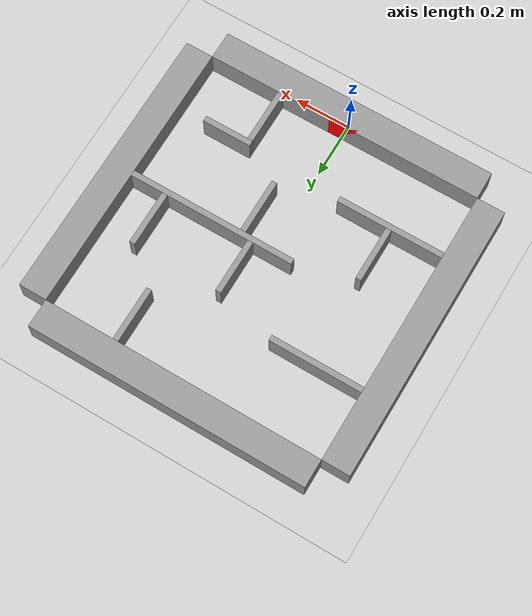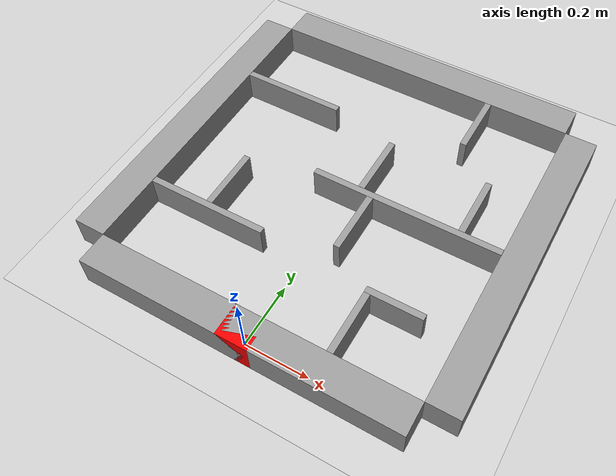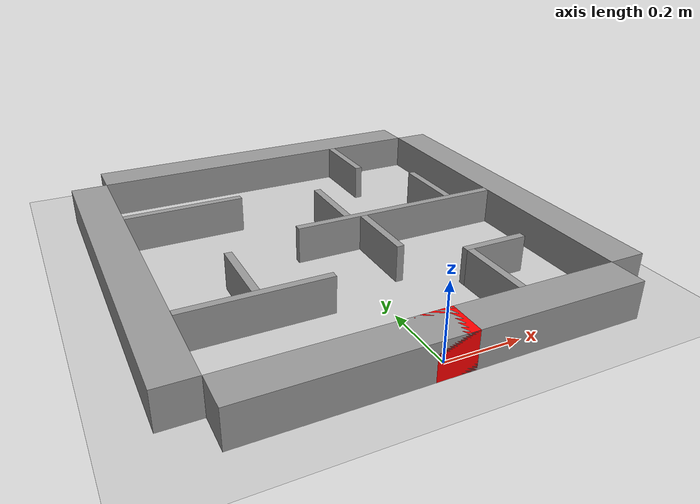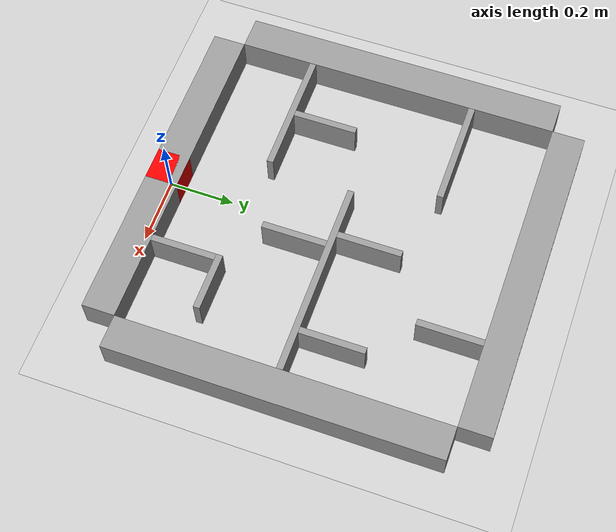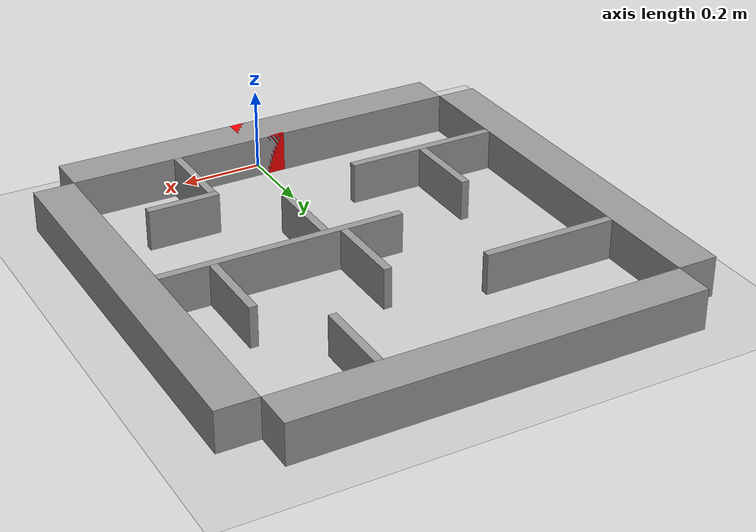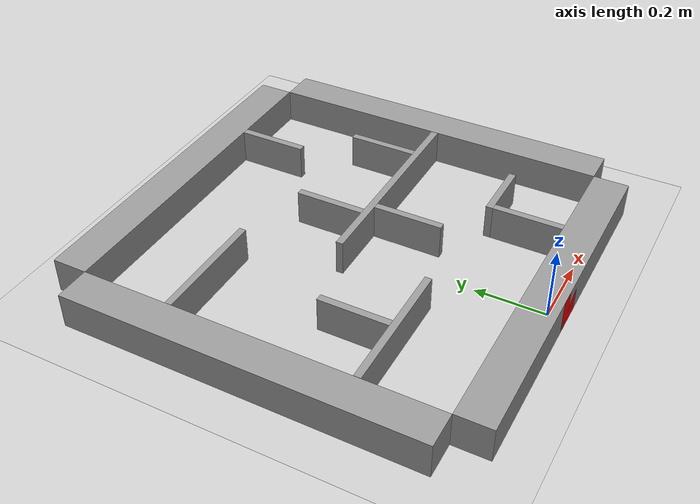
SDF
<sdf version="1.6">
 <world name="default">
  <physics type="ode">
   <ode><solver><type>quick</type><iters>50</iters><friction_model>cone_model</friction_model></solver></ode>
  </physics>
  <light name="sun" type="directional">
   <pose>0 0 10 0 -0 0</pose>
   <diffuse>0.8 0.8 0.8 1</diffuse>
   <specular>0.1 0.1 0.1 1</specular>
   <attenuation>
    <range>1000</range>
    <constant>0.9</constant>
    <linear>0.01</linear>
    <quadratic>0.001</quadratic>
   </attenuation>
   <direction>-0.5 0.5 -1</direction>
  </light>
  <model name="ground_plane">
   <static>1</static>
   <link name="link">
    <collision name="collision">
     <geometry><plane><normal>0 0 1</normal><size>100 100</size></plane></geometry>
     <surface><friction><ode><mu>100</mu><mu2>50</mu2></ode></friction></surface>
    </collision>
    <visual name="visual">
     <cast_shadows>0</cast_shadows>
     <geometry><plane><normal>0 0 1</normal><size>100 100</size></plane></geometry>
     <material>
      <script><uri>file://media/materials/scripts/gazebo.material</uri><name>Gazebo/Grey</name></script>
     </material>
    </visual>
   </link>
  </model>
  <gravity>0 0 -9.8</gravity>
  <magnetic_field>6e-06 2.3e-05 -4.2e-05</magnetic_field>
  <atmosphere type="adiabatic"/>
  <physics name="default_physics" default="0" type="ode">
   <max_step_size>0.001</max_step_size>
   <real_time_factor>1</real_time_factor>
   <real_time_update_rate>1000</real_time_update_rate>
  </physics>
  <scene><ambient>0.4 0.4 0.4 1</ambient><background>0.7 0.7 0.7 1</background><shadows>1</shadows></scene>
  <spherical_coordinates>
   <surface_model>EARTH_WGS84</surface_model>
   <latitude_deg>0</latitude_deg>
   <longitude_deg>0</longitude_deg>
   <elevation>0</elevation>
   <heading_deg>0</heading_deg>
  </spherical_coordinates>
  <model name="vector_world_4">
   <link name="link_0">
    <pose>-0.03914 -0.521493 0 0 -0 0</pose>
    <inertial>
     <mass>1</mass>
     <inertia>
      <ixx>0.166667</ixx>
      <ixy>0</ixy>
      <ixz>0</ixz>
      <iyy>0.166667</iyy>
      <iyz>0</iyz>
      <izz>0.166667</izz>
     </inertia>
    </inertial>
    <visual name="visual">
     <geometry><box><size>1 0.1 0.1</size></box></geometry>
     <material>
      <lighting>1</lighting>
      <script><uri>file://media/materials/scripts/gazebo.material</uri><name>Gazebo/Grey</name></script>
      <ambient>0.3 0.3 0.3 1</ambient>
      <diffuse>0.7 0.7 0.7 1</diffuse>
      <specular>0.01 0.01 0.01 1</specular>
      <emissive>0 0 0 1</emissive>
      <shader type="vertex"><normal_map>__default__</normal_map></shader>
     </material>
    </visual>
    <collision name="collision">
     <geometry><box><size>1 0.1 0.1</size></box></geometry>
     <surface>
      <friction>
       <ode><mu>1</mu><mu2>1</mu2><fdir1>0 0 0</fdir1><slip1>0</slip1><slip2>0</slip2></ode>
       <torsional>
        <coefficient>1</coefficient>
        <patch_radius>0</patch_radius>
        <surface_radius>0</surface_radius>
        <use_patch_radius>1</use_patch_radius>
        <ode><slip>0</slip></ode>
       </torsional>
      </friction>
      <bounce><restitution_coefficient>0</restitution_coefficient><threshold>1e+06</threshold></bounce>
      <contact>
       <collide_without_contact>0</collide_without_contact>
       <collide_without_contact_bitmask>1</collide_without_contact_bitmask>
       <collide_bitmask>1</collide_bitmask>
       <ode>
        <soft_cfm>0</soft_cfm>
        <soft_erp>0.2</soft_erp>
        <kp>1e+13</kp>
        <kd>1</kd>
        <max_vel>0.01</max_vel>
        <min_depth>0</min_depth>
       </ode>
       <bullet>
        <split_impulse>1</split_impulse>
        <split_impulse_penetration_threshold>-0.01</split_impulse_penetration_threshold>
        <soft_cfm>0</soft_cfm>
        <soft_erp>0.2</soft_erp>
        <kp>1e+13</kp>
        <kd>1</kd>
       </bullet>
      </contact>
     </surface>
    </collision>
   </link>
   <link name="link_0_clone">
    <pose>0.51086 0.028507 0 0 -0 1.57</pose>
    <inertial>
     <mass>1</mass>
     <inertia>
      <ixx>0.166667</ixx>
      <ixy>0</ixy>
      <ixz>0</ixz>
      <iyy>0.166667</iyy>
      <iyz>0</iyz>
      <izz>0.166667</izz>
     </inertia>
    </inertial>
    <visual name="visual">
     <geometry><box><size>1 0.1 0.1</size></box></geometry>
     <material>
      <lighting>1</lighting>
      <script><uri>file://media/materials/scripts/gazebo.material</uri><name>Gazebo/Grey</name></script>
      <ambient>0.3 0.3 0.3 1</ambient>
      <diffuse>0.7 0.7 0.7 1</diffuse>
      <specular>0.01 0.01 0.01 1</specular>
      <emissive>0 0 0 1</emissive>
      <shader type="vertex"><normal_map>__default__</normal_map></shader>
     </material>
    </visual>
    <collision name="collision">
     <geometry><box><size>1 0.1 0.1</size></box></geometry>
     <surface>
      <friction>
       <ode><mu>1</mu><mu2>1</mu2><fdir1>0 0 0</fdir1><slip1>0</slip1><slip2>0</slip2></ode>
       <torsional>
        <coefficient>1</coefficient>
        <patch_radius>0</patch_radius>
        <surface_radius>0</surface_radius>
        <use_patch_radius>1</use_patch_radius>
        <ode><slip>0</slip></ode>
       </torsional>
      </friction>
      <bounce><restitution_coefficient>0</restitution_coefficient><threshold>1e+06</threshold></bounce>
      <contact>
       <collide_without_contact>0</collide_without_contact>
       <collide_without_contact_bitmask>1</collide_without_contact_bitmask>
       <collide_bitmask>1</collide_bitmask>
       <ode>
        <soft_cfm>0</soft_cfm>
        <soft_erp>0.2</soft_erp>
        <kp>1e+13</kp>
        <kd>1</kd>
        <max_vel>0.01</max_vel>
        <min_depth>0</min_depth>
       </ode>
       <bullet>
        <split_impulse>1</split_impulse>
        <split_impulse_penetration_threshold>-0.01</split_impulse_penetration_threshold>
        <soft_cfm>0</soft_cfm>
        <soft_erp>0.2</soft_erp>
        <kp>1e+13</kp>
        <kd>1</kd>
       </bullet>
      </contact>
     </surface>
    </collision>
   </link>
   <link name="link_0_clone_0">
    <pose>-0.58914 0.028507 0 0 -0 1.57</pose>
    <inertial>
     <mass>1</mass>
     <inertia>
      <ixx>0.166667</ixx>
      <ixy>0</ixy>
      <ixz>0</ixz>
      <iyy>0.166667</iyy>
      <iyz>0</iyz>
      <izz>0.166667</izz>
     </inertia>
    </inertial>
    <visual name="visual">
     <geometry><box><size>1 0.1 0.1</size></box></geometry>
     <material>
      <lighting>1</lighting>
      <script><uri>file://media/materials/scripts/gazebo.material</uri><name>Gazebo/Grey</name></script>
      <ambient>0.3 0.3 0.3 1</ambient>
      <diffuse>0.7 0.7 0.7 1</diffuse>
      <specular>0.01 0.01 0.01 1</specular>
      <emissive>0 0 0 1</emissive>
      <shader type="vertex"><normal_map>__default__</normal_map></shader>
     </material>
    </visual>
    <collision name="collision">
     <geometry><box><size>1 0.1 0.1</size></box></geometry>
     <surface>
      <friction>
       <ode><mu>1</mu><mu2>1</mu2><fdir1>0 0 0</fdir1><slip1>0</slip1><slip2>0</slip2></ode>
       <torsional>
        <coefficient>1</coefficient>
        <patch_radius>0</patch_radius>
        <surface_radius>0</surface_radius>
        <use_patch_radius>1</use_patch_radius>
        <ode><slip>0</slip></ode>
       </torsional>
      </friction>
      <bounce><restitution_coefficient>0</restitution_coefficient><threshold>1e+06</threshold></bounce>
      <contact>
       <collide_without_contact>0</collide_without_contact>
       <collide_without_contact_bitmask>1</collide_without_contact_bitmask>
       <collide_bitmask>1</collide_bitmask>
       <ode>
        <soft_cfm>0</soft_cfm>
        <soft_erp>0.2</soft_erp>
        <kp>1e+13</kp>
        <kd>1</kd>
        <max_vel>0.01</max_vel>
        <min_depth>0</min_depth>
       </ode>
       <bullet>
        <split_impulse>1</split_impulse>
        <split_impulse_penetration_threshold>-0.01</split_impulse_penetration_threshold>
        <soft_cfm>0</soft_cfm>
        <soft_erp>0.2</soft_erp>
        <kp>1e+13</kp>
        <kd>1</kd>
       </bullet>
      </contact>
     </surface>
    </collision>
   </link>
   <link name="link_0_clone_1">
    <pose>-0.03914 0.578507 0 0 -0 0</pose>
    <inertial>
     <mass>1</mass>
     <inertia>
      <ixx>0.166667</ixx>
      <ixy>0</ixy>
      <ixz>0</ixz>
      <iyy>0.166667</iyy>
      <iyz>0</iyz>
      <izz>0.166667</izz>
     </inertia>
    </inertial>
    <visual name="visual">
     <geometry><box><size>1 0.1 0.1</size></box></geometry>
     <material>
      <lighting>1</lighting>
      <script><uri>file://media/materials/scripts/gazebo.material</uri><name>Gazebo/Grey</name></script>
      <ambient>0.3 0.3 0.3 1</ambient>
      <diffuse>0.7 0.7 0.7 1</diffuse>
      <specular>0.01 0.01 0.01 1</specular>
      <emissive>0 0 0 1</emissive>
      <shader type="vertex"><normal_map>__default__</normal_map></shader>
     </material>
    </visual>
    <collision name="collision">
     <geometry><box><size>1 0.1 0.1</size></box></geometry>
     <surface>
      <friction>
       <ode><mu>1</mu><mu2>1</mu2><fdir1>0 0 0</fdir1><slip1>0</slip1><slip2>0</slip2></ode>
       <torsional>
        <coefficient>1</coefficient>
        <patch_radius>0</patch_radius>
        <surface_radius>0</surface_radius>
        <use_patch_radius>1</use_patch_radius>
        <ode><slip>0</slip></ode>
       </torsional>
      </friction>
      <bounce><restitution_coefficient>0</restitution_coefficient><threshold>1e+06</threshold></bounce>
      <contact>
       <collide_without_contact>0</collide_without_contact>
       <collide_without_contact_bitmask>1</collide_without_contact_bitmask>
       <collide_bitmask>1</collide_bitmask>
       <ode>
        <soft_cfm>0</soft_cfm>
        <soft_erp>0.2</soft_erp>
        <kp>1e+13</kp>
        <kd>1</kd>
        <max_vel>0.01</max_vel>
        <min_depth>0</min_depth>
       </ode>
       <bullet>
        <split_impulse>1</split_impulse>
        <split_impulse_penetration_threshold>-0.01</split_impulse_penetration_threshold>
        <soft_cfm>0</soft_cfm>
        <soft_erp>0.2</soft_erp>
        <kp>1e+13</kp>
        <kd>1</kd>
       </bullet>
      </contact>
     </surface>
    </collision>
   </link>
   <link name="link_1">
    <pose>0.160273 0.021189 0 0 -0 0</pose>
    <inertial>
     <mass>6.00414</mass>
     <inertia><ixx>1.00069</ixx><ixy>0</ixy><ixz>0</ixz><iyy>18.5377</iyy><iyz>0</iyz><izz>18.5377</izz></inertia>
    </inertial>
    <visual name="visual">
     <geometry><box><size>0.600378 0.02 0.1</size></box></geometry>
     <material>
      <lighting>1</lighting>
      <script><uri>file://media/materials/scripts/gazebo.material</uri><name>Gazebo/Grey</name></script>
      <ambient>0.3 0.3 0.3 1</ambient>
      <diffuse>0.7 0.7 0.7 1</diffuse>
      <specular>0.01 0.01 0.01 1</specular>
      <emissive>0 0 0 1</emissive>
      <shader type="vertex"><normal_map>__default__</normal_map></shader>
     </material>
    </visual>
    <collision name="collision">
     <geometry><box><size>0.600378 0.02 0.1</size></box></geometry>
     <surface>
      <friction>
       <ode><mu>1</mu><mu2>1</mu2><fdir1>0 0 0</fdir1><slip1>0</slip1><slip2>0</slip2></ode>
       <torsional>
        <coefficient>1</coefficient>
        <patch_radius>0</patch_radius>
        <surface_radius>0</surface_radius>
        <use_patch_radius>1</use_patch_radius>
        <ode><slip>0</slip></ode>
       </torsional>
      </friction>
      <bounce><restitution_coefficient>0</restitution_coefficient><threshold>1e+06</threshold></bounce>
      <contact>
       <collide_without_contact>0</collide_without_contact>
       <collide_without_contact_bitmask>1</collide_without_contact_bitmask>
       <collide_bitmask>1</collide_bitmask>
       <ode>
        <soft_cfm>0</soft_cfm>
        <soft_erp>0.2</soft_erp>
        <kp>1e+13</kp>
        <kd>1</kd>
        <max_vel>0.01</max_vel>
        <min_depth>0</min_depth>
       </ode>
       <bullet>
        <split_impulse>1</split_impulse>
        <split_impulse_penetration_threshold>-0.01</split_impulse_penetration_threshold>
        <soft_cfm>0</soft_cfm>
        <soft_erp>0.2</soft_erp>
        <kp>1e+13</kp>
        <kd>1</kd>
       </bullet>
      </contact>
     </surface>
    </collision>
   </link>
   <link name="link_1_clone">
    <pose>-0.348111 -0.24109 0 0 -0 0</pose>
    <inertial>
     <mass>3.81284</mass>
     <inertia><ixx>0.635474</ixx><ixy>0</ixy><ixz>0</ixz><iyy>4.93694</iyy><iyz>0</iyz><izz>4.93694</izz></inertia>
    </inertial>
    <visual name="visual">
     <geometry><box><size>0.381262 0.02 0.1</size></box></geometry>
     <material>
      <lighting>1</lighting>
      <script><uri>file://media/materials/scripts/gazebo.material</uri><name>Gazebo/Grey</name></script>
      <ambient>0.3 0.3 0.3 1</ambient>
      <diffuse>0.7 0.7 0.7 1</diffuse>
      <specular>0.01 0.01 0.01 1</specular>
      <emissive>0 0 0 1</emissive>
      <shader type="vertex"><normal_map>__default__</normal_map></shader>
     </material>
    </visual>
    <collision name="collision">
     <geometry><box><size>0.381262 0.02 0.1</size></box></geometry>
     <surface>
      <friction>
       <ode><mu>1</mu><mu2>1</mu2><fdir1>0 0 0</fdir1><slip1>0</slip1><slip2>0</slip2></ode>
       <torsional>
        <coefficient>1</coefficient>
        <patch_radius>0</patch_radius>
        <surface_radius>0</surface_radius>
        <use_patch_radius>1</use_patch_radius>
        <ode><slip>0</slip></ode>
       </torsional>
      </friction>
      <bounce><restitution_coefficient>0</restitution_coefficient><threshold>1e+06</threshold></bounce>
      <contact>
       <collide_without_contact>0</collide_without_contact>
       <collide_without_contact_bitmask>1</collide_without_contact_bitmask>
       <collide_bitmask>1</collide_bitmask>
       <ode>
        <soft_cfm>0</soft_cfm>
        <soft_erp>0.2</soft_erp>
        <kp>1e+13</kp>
        <kd>1</kd>
        <max_vel>0.01</max_vel>
        <min_depth>0</min_depth>
       </ode>
       <bullet>
        <split_impulse>1</split_impulse>
        <split_impulse_penetration_threshold>-0.01</split_impulse_penetration_threshold>
        <soft_cfm>0</soft_cfm>
        <soft_erp>0.2</soft_erp>
        <kp>1e+13</kp>
        <kd>1</kd>
       </bullet>
      </contact>
     </surface>
    </collision>
   </link>
   <link name="link_1_clone_0">
    <pose>-0.37322 0.2744 0 0 -0 0</pose>
    <inertial>
     <mass>3.31064</mass>
     <inertia><ixx>0.551774</ixx><ixy>0</ixy><ixz>0</ixz><iyy>3.29972</iyy><iyz>0</iyz><izz>3.29972</izz></inertia>
    </inertial>
    <visual name="visual">
     <geometry><box><size>0.331044 0.02 0.1</size></box></geometry>
     <material>
      <lighting>1</lighting>
      <script><uri>file://media/materials/scripts/gazebo.material</uri><name>Gazebo/Grey</name></script>
      <ambient>0.3 0.3 0.3 1</ambient>
      <diffuse>0.7 0.7 0.7 1</diffuse>
      <specular>0.01 0.01 0.01 1</specular>
      <emissive>0 0 0 1</emissive>
      <shader type="vertex"><normal_map>__default__</normal_map></shader>
     </material>
    </visual>
    <collision name="collision">
     <geometry><box><size>0.331044 0.02 0.1</size></box></geometry>
     <surface>
      <friction>
       <ode><mu>1</mu><mu2>1</mu2><fdir1>0 0 0</fdir1><slip1>0</slip1><slip2>0</slip2></ode>
       <torsional>
        <coefficient>1</coefficient>
        <patch_radius>0</patch_radius>
        <surface_radius>0</surface_radius>
        <use_patch_radius>1</use_patch_radius>
        <ode><slip>0</slip></ode>
       </torsional>
      </friction>
      <bounce><restitution_coefficient>0</restitution_coefficient><threshold>1e+06</threshold></bounce>
      <contact>
       <collide_without_contact>0</collide_without_contact>
       <collide_without_contact_bitmask>1</collide_without_contact_bitmask>
       <collide_bitmask>1</collide_bitmask>
       <ode>
        <soft_cfm>0</soft_cfm>
        <soft_erp>0.2</soft_erp>
        <kp>1e+13</kp>
        <kd>1</kd>
        <max_vel>0.01</max_vel>
        <min_depth>0</min_depth>
       </ode>
       <bullet>
        <split_impulse>1</split_impulse>
        <split_impulse_penetration_threshold>-0.01</split_impulse_penetration_threshold>
        <soft_cfm>0</soft_cfm>
        <soft_erp>0.2</soft_erp>
        <kp>1e+13</kp>
        <kd>1</kd>
       </bullet>
      </contact>
     </surface>
    </collision>
   </link>
   <link name="link_1_clone_0_clone">
    <pose>0.274194 -0.264688 0 0 -0 0</pose>
    <inertial>
     <mass>1.77051</mass>
     <inertia>
      <ixx>0.295085</ixx>
      <ixy>0</ixy>
      <ixz>0</ixz>
      <iyy>0.610048</iyy>
      <iyz>0</iyz>
      <izz>0.610048</izz>
     </inertia>
    </inertial>
    <visual name="visual">
     <geometry><box><size>0.17704 0.02 0.1</size></box></geometry>
     <material>
      <lighting>1</lighting>
      <script><uri>file://media/materials/scripts/gazebo.material</uri><name>Gazebo/Grey</name></script>
      <ambient>0.3 0.3 0.3 1</ambient>
      <diffuse>0.7 0.7 0.7 1</diffuse>
      <specular>0.01 0.01 0.01 1</specular>
      <emissive>0 0 0 1</emissive>
      <shader type="vertex"><normal_map>__default__</normal_map></shader>
     </material>
    </visual>
    <collision name="collision">
     <geometry><box><size>0.17704 0.02 0.1</size></box></geometry>
     <surface>
      <friction>
       <ode><mu>1</mu><mu2>1</mu2><fdir1>0 0 0</fdir1><slip1>0</slip1><slip2>0</slip2></ode>
       <torsional>
        <coefficient>1</coefficient>
        <patch_radius>0</patch_radius>
        <surface_radius>0</surface_radius>
        <use_patch_radius>1</use_patch_radius>
        <ode><slip>0</slip></ode>
       </torsional>
      </friction>
      <bounce><restitution_coefficient>0</restitution_coefficient><threshold>1e+06</threshold></bounce>
      <contact>
       <collide_without_contact>0</collide_without_contact>
       <collide_without_contact_bitmask>1</collide_without_contact_bitmask>
       <collide_bitmask>1</collide_bitmask>
       <ode>
        <soft_cfm>0</soft_cfm>
        <soft_erp>0.2</soft_erp>
        <kp>1e+13</kp>
        <kd>1</kd>
        <max_vel>0.01</max_vel>
        <min_depth>0</min_depth>
       </ode>
       <bullet>
        <split_impulse>1</split_impulse>
        <split_impulse_penetration_threshold>-0.01</split_impulse_penetration_threshold>
        <soft_cfm>0</soft_cfm>
        <soft_erp>0.2</soft_erp>
        <kp>1e+13</kp>
        <kd>1</kd>
       </bullet>
      </contact>
     </surface>
    </collision>
   </link>
   <link name="link_1_clone_1">
    <pose>0.010812 0.129685 0 0 -0 1.57</pose>
    <inertial>
     <mass>1.96989</mass>
     <inertia><ixx>0.328315</ixx><ixy>0</ixy><ixz>0</ixz><iyy>0.80117</iyy><iyz>0</iyz><izz>0.80117</izz></inertia>
    </inertial>
    <visual name="visual">
     <geometry><box><size>0.196976 0.02 0.1</size></box></geometry>
     <material>
      <lighting>1</lighting>
      <script><uri>file://media/materials/scripts/gazebo.material</uri><name>Gazebo/Grey</name></script>
      <ambient>0.3 0.3 0.3 1</ambient>
      <diffuse>0.7 0.7 0.7 1</diffuse>
      <specular>0.01 0.01 0.01 1</specular>
      <emissive>0 0 0 1</emissive>
      <shader type="vertex"><normal_map>__default__</normal_map></shader>
     </material>
    </visual>
    <collision name="collision">
     <geometry><box><size>0.196976 0.02 0.1</size></box></geometry>
     <surface>
      <friction>
       <ode><mu>1</mu><mu2>1</mu2><fdir1>0 0 0</fdir1><slip1>0</slip1><slip2>0</slip2></ode>
       <torsional>
        <coefficient>1</coefficient>
        <patch_radius>0</patch_radius>
        <surface_radius>0</surface_radius>
        <use_patch_radius>1</use_patch_radius>
        <ode><slip>0</slip></ode>
       </torsional>
      </friction>
      <bounce><restitution_coefficient>0</restitution_coefficient><threshold>1e+06</threshold></bounce>
      <contact>
       <collide_without_contact>0</collide_without_contact>
       <collide_without_contact_bitmask>1</collide_without_contact_bitmask>
       <collide_bitmask>1</collide_bitmask>
       <ode>
        <soft_cfm>0</soft_cfm>
        <soft_erp>0.2</soft_erp>
        <kp>1e+13</kp>
        <kd>1</kd>
        <max_vel>0.01</max_vel>
        <min_depth>0</min_depth>
       </ode>
       <bullet>
        <split_impulse>1</split_impulse>
        <split_impulse_penetration_threshold>-0.01</split_impulse_penetration_threshold>
        <soft_cfm>0</soft_cfm>
        <soft_erp>0.2</soft_erp>
        <kp>1e+13</kp>
        <kd>1</kd>
       </bullet>
      </contact>
     </surface>
    </collision>
   </link>
   <link name="link_1_clone_1_clone">
    <pose>0.201887 0.430011 0 0 -0 1.57</pose>
    <inertial>
     <mass>1.96989</mass>
     <inertia><ixx>0.328315</ixx><ixy>0</ixy><ixz>0</ixz><iyy>0.80117</iyy><iyz>0</iyz><izz>0.80117</izz></inertia>
    </inertial>
    <visual name="visual">
     <geometry><box><size>0.196976 0.02 0.1</size></box></geometry>
     <material>
      <lighting>1</lighting>
      <script><uri>file://media/materials/scripts/gazebo.material</uri><name>Gazebo/Grey</name></script>
      <ambient>0.3 0.3 0.3 1</ambient>
      <diffuse>0.7 0.7 0.7 1</diffuse>
      <specular>0.01 0.01 0.01 1</specular>
      <emissive>0 0 0 1</emissive>
      <shader type="vertex"><normal_map>__default__</normal_map></shader>
     </material>
    </visual>
    <collision name="collision">
     <geometry><box><size>0.196976 0.02 0.1</size></box></geometry>
     <surface>
      <friction>
       <ode><mu>1</mu><mu2>1</mu2><fdir1>0 0 0</fdir1><slip1>0</slip1><slip2>0</slip2></ode>
       <torsional>
        <coefficient>1</coefficient>
        <patch_radius>0</patch_radius>
        <surface_radius>0</surface_radius>
        <use_patch_radius>1</use_patch_radius>
        <ode><slip>0</slip></ode>
       </torsional>
      </friction>
      <bounce><restitution_coefficient>0</restitution_coefficient><threshold>1e+06</threshold></bounce>
      <contact>
       <collide_without_contact>0</collide_without_contact>
       <collide_without_contact_bitmask>1</collide_without_contact_bitmask>
       <collide_bitmask>1</collide_bitmask>
       <ode>
        <soft_cfm>0</soft_cfm>
        <soft_erp>0.2</soft_erp>
        <kp>1e+13</kp>
        <kd>1</kd>
        <max_vel>0.01</max_vel>
        <min_depth>0</min_depth>
       </ode>
       <bullet>
        <split_impulse>1</split_impulse>
        <split_impulse_penetration_threshold>-0.01</split_impulse_penetration_threshold>
        <soft_cfm>0</soft_cfm>
        <soft_erp>0.2</soft_erp>
        <kp>1e+13</kp>
        <kd>1</kd>
       </bullet>
      </contact>
     </surface>
    </collision>
   </link>
   <link name="link_1_clone_1_clone_0">
    <pose>-0.347282 -0.132594 0 0 -0 1.57</pose>
    <inertial>
     <mass>1.96989</mass>
     <inertia><ixx>0.328315</ixx><ixy>0</ixy><ixz>0</ixz><iyy>0.80117</iyy><iyz>0</iyz><izz>0.80117</izz></inertia>
    </inertial>
    <visual name="visual">
     <geometry><box><size>0.196976 0.02 0.1</size></box></geometry>
     <material>
      <lighting>1</lighting>
      <script><uri>file://media/materials/scripts/gazebo.material</uri><name>Gazebo/Grey</name></script>
      <ambient>0.3 0.3 0.3 1</ambient>
      <diffuse>0.7 0.7 0.7 1</diffuse>
      <specular>0.01 0.01 0.01 1</specular>
      <emissive>0 0 0 1</emissive>
      <shader type="vertex"><normal_map>__default__</normal_map></shader>
     </material>
    </visual>
    <collision name="collision">
     <geometry><box><size>0.196976 0.02 0.1</size></box></geometry>
     <surface>
      <friction>
       <ode><mu>1</mu><mu2>1</mu2><fdir1>0 0 0</fdir1><slip1>0</slip1><slip2>0</slip2></ode>
       <torsional>
        <coefficient>1</coefficient>
        <patch_radius>0</patch_radius>
        <surface_radius>0</surface_radius>
        <use_patch_radius>1</use_patch_radius>
        <ode><slip>0</slip></ode>
       </torsional>
      </friction>
      <bounce><restitution_coefficient>0</restitution_coefficient><threshold>1e+06</threshold></bounce>
      <contact>
       <collide_without_contact>0</collide_without_contact>
       <collide_without_contact_bitmask>1</collide_without_contact_bitmask>
       <collide_bitmask>1</collide_bitmask>
       <ode>
        <soft_cfm>0</soft_cfm>
        <soft_erp>0.2</soft_erp>
        <kp>1e+13</kp>
        <kd>1</kd>
        <max_vel>0.01</max_vel>
        <min_depth>0</min_depth>
       </ode>
       <bullet>
        <split_impulse>1</split_impulse>
        <split_impulse_penetration_threshold>-0.01</split_impulse_penetration_threshold>
        <soft_cfm>0</soft_cfm>
        <soft_erp>0.2</soft_erp>
        <kp>1e+13</kp>
        <kd>1</kd>
       </bullet>
      </contact>
     </surface>
    </collision>
   </link>
   <link name="link_1_clone_1_clone_1">
    <pose>0.331962 0.129548 0 0 -0 1.57</pose>
    <inertial>
     <mass>1.96989</mass>
     <inertia><ixx>0.328315</ixx><ixy>0</ixy><ixz>0</ixz><iyy>0.80117</iyy><iyz>0</iyz><izz>0.80117</izz></inertia>
    </inertial>
    <visual name="visual">
     <geometry><box><size>0.196976 0.02 0.1</size></box></geometry>
     <material>
      <lighting>1</lighting>
      <script><uri>file://media/materials/scripts/gazebo.material</uri><name>Gazebo/Grey</name></script>
      <ambient>0.3 0.3 0.3 1</ambient>
      <diffuse>0.7 0.7 0.7 1</diffuse>
      <specular>0.01 0.01 0.01 1</specular>
      <emissive>0 0 0 1</emissive>
      <shader type="vertex"><normal_map>__default__</normal_map></shader>
     </material>
    </visual>
    <collision name="collision">
     <geometry><box><size>0.196976 0.02 0.1</size></box></geometry>
     <surface>
      <friction>
       <ode><mu>1</mu><mu2>1</mu2><fdir1>0 0 0</fdir1><slip1>0</slip1><slip2>0</slip2></ode>
       <torsional>
        <coefficient>1</coefficient>
        <patch_radius>0</patch_radius>
        <surface_radius>0</surface_radius>
        <use_patch_radius>1</use_patch_radius>
        <ode><slip>0</slip></ode>
       </torsional>
      </friction>
      <bounce><restitution_coefficient>0</restitution_coefficient><threshold>1e+06</threshold></bounce>
      <contact>
       <collide_without_contact>0</collide_without_contact>
       <collide_without_contact_bitmask>1</collide_without_contact_bitmask>
       <collide_bitmask>1</collide_bitmask>
       <ode>
        <soft_cfm>0</soft_cfm>
        <soft_erp>0.2</soft_erp>
        <kp>1e+13</kp>
        <kd>1</kd>
        <max_vel>0.01</max_vel>
        <min_depth>0</min_depth>
       </ode>
       <bullet>
        <split_impulse>1</split_impulse>
        <split_impulse_penetration_threshold>-0.01</split_impulse_penetration_threshold>
        <soft_cfm>0</soft_cfm>
        <soft_erp>0.2</soft_erp>
        <kp>1e+13</kp>
        <kd>1</kd>
       </bullet>
      </contact>
     </surface>
    </collision>
   </link>
   <link name="link_1_clone_1_clone_2">
    <pose>0.050292 -0.087307 0 0 -0 1.57</pose>
    <inertial>
     <mass>1.96989</mass>
     <inertia><ixx>0.328315</ixx><ixy>0</ixy><ixz>0</ixz><iyy>0.80117</iyy><iyz>0</iyz><izz>0.80117</izz></inertia>
    </inertial>
    <visual name="visual">
     <geometry><box><size>0.196976 0.02 0.1</size></box></geometry>
     <material>
      <lighting>1</lighting>
      <script><uri>file://media/materials/scripts/gazebo.material</uri><name>Gazebo/Grey</name></script>
      <ambient>0.3 0.3 0.3 1</ambient>
      <diffuse>0.7 0.7 0.7 1</diffuse>
      <specular>0.01 0.01 0.01 1</specular>
      <emissive>0 0 0 1</emissive>
      <shader type="vertex"><normal_map>__default__</normal_map></shader>
     </material>
    </visual>
    <collision name="collision">
     <geometry><box><size>0.196976 0.02 0.1</size></box></geometry>
     <surface>
      <friction>
       <ode><mu>1</mu><mu2>1</mu2><fdir1>0 0 0</fdir1><slip1>0</slip1><slip2>0</slip2></ode>
       <torsional>
        <coefficient>1</coefficient>
        <patch_radius>0</patch_radius>
        <surface_radius>0</surface_radius>
        <use_patch_radius>1</use_patch_radius>
        <ode><slip>0</slip></ode>
       </torsional>
      </friction>
      <bounce><restitution_coefficient>0</restitution_coefficient><threshold>1e+06</threshold></bounce>
      <contact>
       <collide_without_contact>0</collide_without_contact>
       <collide_without_contact_bitmask>1</collide_without_contact_bitmask>
       <collide_bitmask>1</collide_bitmask>
       <ode>
        <soft_cfm>0</soft_cfm>
        <soft_erp>0.2</soft_erp>
        <kp>1e+13</kp>
        <kd>1</kd>
        <max_vel>0.01</max_vel>
        <min_depth>0</min_depth>
       </ode>
       <bullet>
        <split_impulse>1</split_impulse>
        <split_impulse_penetration_threshold>-0.01</split_impulse_penetration_threshold>
        <soft_cfm>0</soft_cfm>
        <soft_erp>0.2</soft_erp>
        <kp>1e+13</kp>
        <kd>1</kd>
       </bullet>
      </contact>
     </surface>
    </collision>
   </link>
   <link name="link_1_clone_1_clone_3">
    <pose>0.195753 -0.373184 0 0 -0 1.57</pose>
    <inertial>
     <mass>1.96989</mass>
     <inertia><ixx>0.328315</ixx><ixy>0</ixy><ixz>0</ixz><iyy>0.80117</iyy><iyz>0</iyz><izz>0.80117</izz></inertia>
    </inertial>
    <visual name="visual">
     <geometry><box><size>0.196976 0.02 0.1</size></box></geometry>
     <material>
      <lighting>1</lighting>
      <script><uri>file://media/materials/scripts/gazebo.material</uri><name>Gazebo/Grey</name></script>
      <ambient>0.3 0.3 0.3 1</ambient>
      <diffuse>0.7 0.7 0.7 1</diffuse>
      <specular>0.01 0.01 0.01 1</specular>
      <emissive>0 0 0 1</emissive>
      <shader type="vertex"><normal_map>__default__</normal_map></shader>
     </material>
    </visual>
    <collision name="collision">
     <geometry><box><size>0.196976 0.02 0.1</size></box></geometry>
     <surface>
      <friction>
       <ode><mu>1</mu><mu2>1</mu2><fdir1>0 0 0</fdir1><slip1>0</slip1><slip2>0</slip2></ode>
       <torsional>
        <coefficient>1</coefficient>
        <patch_radius>0</patch_radius>
        <surface_radius>0</surface_radius>
        <use_patch_radius>1</use_patch_radius>
        <ode><slip>0</slip></ode>
       </torsional>
      </friction>
      <bounce><restitution_coefficient>0</restitution_coefficient><threshold>1e+06</threshold></bounce>
      <contact>
       <collide_without_contact>0</collide_without_contact>
       <collide_without_contact_bitmask>1</collide_without_contact_bitmask>
       <collide_bitmask>1</collide_bitmask>
       <ode>
        <soft_cfm>0</soft_cfm>
        <soft_erp>0.2</soft_erp>
        <kp>1e+13</kp>
        <kd>1</kd>
        <max_vel>0.01</max_vel>
        <min_depth>0</min_depth>
       </ode>
       <bullet>
        <split_impulse>1</split_impulse>
        <split_impulse_penetration_threshold>-0.01</split_impulse_penetration_threshold>
        <soft_cfm>0</soft_cfm>
        <soft_erp>0.2</soft_erp>
        <kp>1e+13</kp>
        <kd>1</kd>
       </bullet>
      </contact>
     </surface>
    </collision>
   </link>
   <static>1</static>
   <pose>0.03914 0.521493 0.05 0 -0 0</pose>
  </model>
  <model name="moving_box">
   <pose>0 0 0.05 0 0 0</pose>
   <link name="box_link">
    <inertial>
     <mass>0.1</mass>
     <inertia>
      <ixx>0.000167</ixx>
      <ixy>0</ixy>
      <ixz>0</ixz>
      <iyy>0.000167</iyy>
      <iyz>0</iyz>
      <izz>0.000167</izz>
     </inertia>
    </inertial>
    <visual name="box_visual">
     <geometry><box><size>0.1 0.1 0.1</size></box></geometry>
     <material><ambient>1 0 0 1</ambient><diffuse>1 0 0 1</diffuse></material>
    </visual>
    <collision name="box_collision"><geometry><box><size>0.1 0.1 0.1</size></box></geometry></collision>
   </link>
   <plugin name="box_controller" filename="libgazebo_ros_planar_move.so">
    <ros><namespace>/moving_box</namespace><command_topic>cmd_vel</command_topic></ros>
    <body_name>box_link</body_name>
   </plugin>
  </model>
 </world>
</sdf>
